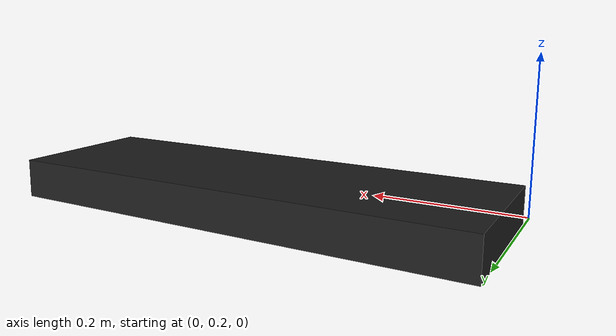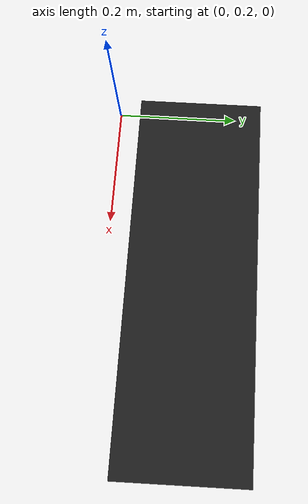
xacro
<?xml version="1.0"?>
<robot xmlns:xacro="http://www.ros.org/wiki/xacro" name="jars">

    <xacro:macro name="Box_inertial_matrix" params="m l w h">
       <inertial>
               <mass value="${m}" />
               <inertia ixx="${m*(h*h + l*l)/12}" ixy = "0" ixz = "0"
                   iyy="${m*(w*w + l*l)/12}" iyz= "0"
                   izz="${m*(w*w + h*h)/12}" />
       </inertial>
    </xacro:macro>

    <xacro:macro name="one_table">

        <link name="world"/>
        <link name="table">
            <visual>
                <origin xyz="0 0 0" rpy="0 0 0"/>
                <geometry>
                    <box size="0.6 0.2 0.05"/>
                </geometry>
            </visual>
            <collision>
                <origin xyz="0 0 0" rpy="0 0 0"/>
                <geometry>
                    <box size="0.6 0.2 0.05"/>
                </geometry>
            </collision>

            <xacro:Box_inertial_matrix m="10" l="0.6" w="0.2" h="0.11"/>
        </link>
        <joint name="cam_joint" type="fixed">
            <origin xyz="0.3 0.34 0.025" rpy="0 0 0"/>
            <parent link="world"/>
            <child link="table"/>
        </joint>
        <gazebo reference="table">
            <material>Gazebo/Black</material>
        </gazebo>
    </xacro:macro>

    <xacro:one_table/>
</robot>
